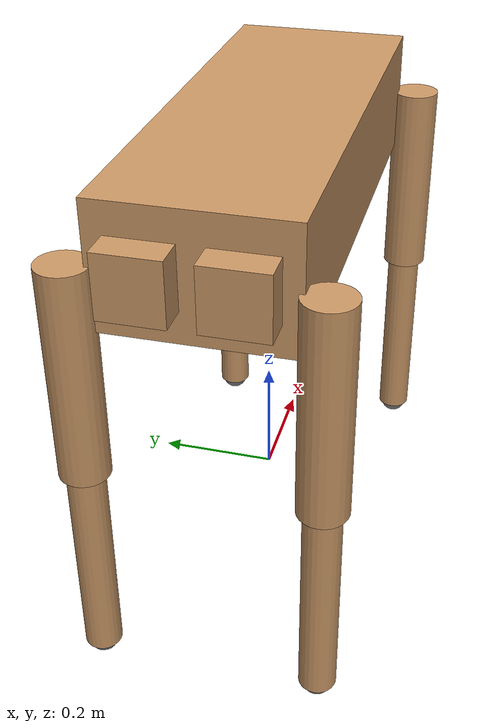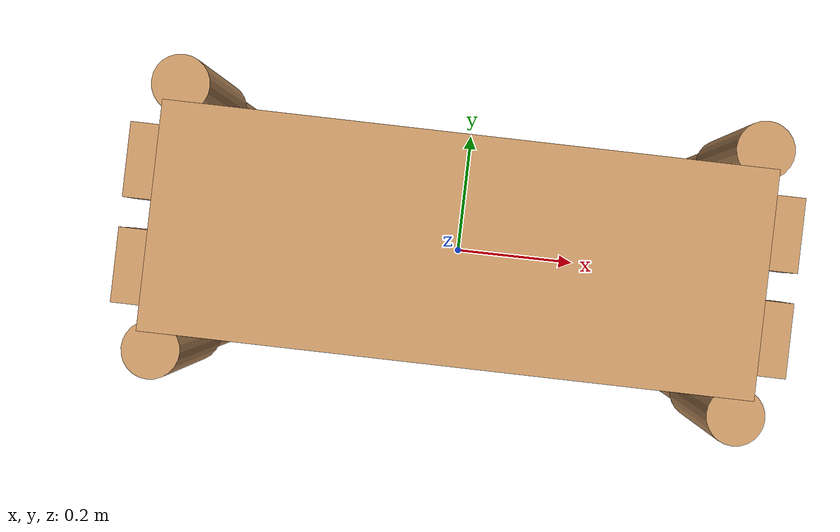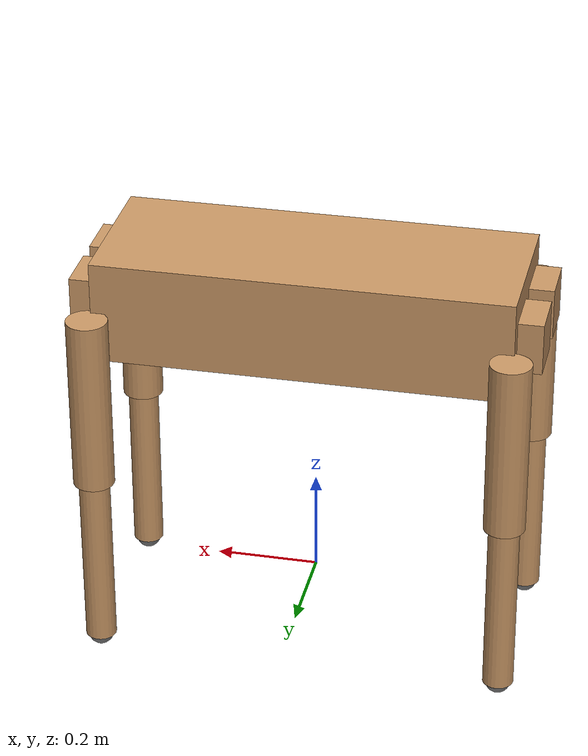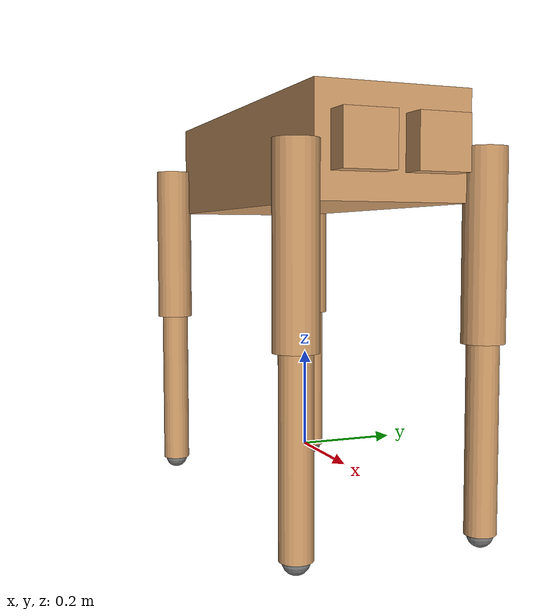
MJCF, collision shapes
<?xml version="1.0" encoding="utf-8"?>
<mujoco model="krm_qugv">
  <compiler angle="radian" autolimits="true" coordinate="local"/>

  <option timestep="0.001" iterations="50" tolerance="1e-10" solver="Newton" gravity="0 0 -9.81" cone="elliptic" impratio="100" integrator="RK4">
    <flag warmstart="enable" energy="enable" contact="enable" frictionloss="enable"/>
  </option>

  <default>
    <default class="krm">
      <joint damping="1.0" frictionloss="0.1" armature="0.01"/>

      <default class="visual">
        <geom type="mesh" contype="0" conaffinity="0" group="2" rgba="1 1 1 1"/>
      </default>

      <default class="collision">
         <geom type="cylinder" group="3" contype="1" conaffinity="1" rgba="0.8 0.6 0.4 1"/>
      </default>

      <default class="foot">
        <geom type="sphere" size="0.025" priority="1" condim="3" friction="0.8 0.02 0.01" solimp="0.015 1 0.031" solref="0.02 1"/>
      </default>

      <default class="hip_roll">
          <joint axis="1 0 0" range="-0.785 0.785"/>
          <position kp="1500" forcerange="-150 150" ctrlrange="-0.785 0.785"/>
      </default>
      <default class="hip_pitch">
          <joint axis="0 1 0" range="-2.356 2.356"/>
          <position kp="1500" forcerange="-150 150" ctrlrange="-2.356 2.356"/>
      </default>
      <default class="knee">
          <joint axis="0 1 0"/>
          <position kp="1500" forcerange="-150 150"/>
          </default>
    </default>
  </default>

  <asset>
    <mesh name="TORSO" file="mesh/TORSO.STL" />
    <mesh name="FL_HIP" file="mesh/FL_HIP.STL" />
    <mesh name="FL_THIGH" file="mesh/FL_THIGH.STL" />
    <mesh name="FL_CALF" file="mesh/FL_CALF.STL" />
    <mesh name="FR_HIP" file="mesh/FR_HIP.STL" />
    <mesh name="FR_THIGH" file="mesh/FR_THIGH.STL" />
    <mesh name="FR_CALF" file="mesh/FR_CALF.STL" />
    <mesh name="RL_HIP" file="mesh/RL_HIP.STL" />
    <mesh name="RL_THIGH" file="mesh/RL_THIGH.STL" />
    <mesh name="RL_CALF" file="mesh/RL_CALF.STL" />
    <mesh name="RR_HIP" file="mesh/RR_HIP.STL" />
    <mesh name="RR_THIGH" file="mesh/RR_THIGH.STL" />
    <mesh name="RR_CALF" file="mesh/RR_CALF.STL" />
  </asset>

  <worldbody>
    <body name="base" pos="0 0 0.6" childclass="krm"> <freejoint/>
      <site name="imu" pos="0 0 0"/>

      <inertial pos="-0.001 0.01 -0.01" mass="15.702" fullinertia="0.12 0.487 0.553 -0.002 0.001 -0.001"/>

      <geom mesh="TORSO" class="visual"/>
      <geom type="box" size="0.4 0.15 0.1" class="collision"/>

      <body name="FL_HIP" pos="0.3985 0.07 0">
        <inertial pos="-0.009 0.001 0" mass="1.683" fullinertia="0.003 0.004 0.003 0 0 0"/>
        <joint name="FL_HR_JOINT" class="hip_roll"/>

        <geom mesh="FL_HIP" class="visual"/>
        <geom type="box" size="0.05 0.05 0.05" class="collision"/> <body name="FL_THIGH" pos="0 0.11125 0">
          <inertial pos="-0.007 -0.022 -0.056" mass="3.615" fullinertia="0.047 0.047 0.007 -0.001 0.003 -0.004"/>
          <joint name="FL_HP_JOINT" class="hip_pitch"/>

          <geom mesh="FL_THIGH" class="visual"/>
          <geom type="cylinder" size="0.04 0.175" pos="0 0 -0.175" class="collision"/>

          <body name="FL_CALF" pos="0 0 -0.35">
             <inertial pos="0.002 0 -0.171" mass="0.968" fullinertia="0.02 0.021 0.001 0 0 0"/>
             <joint name="FL_KN_JOINT" class="knee" range="-2.844 0"/>

             <geom mesh="FL_CALF" class="visual"/>
             <geom type="cylinder" size="0.03 0.175" pos="0 0 -0.175" class="collision"/>

             <geom name="FL_foot" class="foot" pos="0 0 -0.35"/>
             <site name="FL_foot_site" pos="0 0 -0.35" size="0.01" rgba="1 0 0 1"/>
          </body>
        </body>
      </body>

      <body name="FR_HIP" pos="0.3985 -0.07 0">
        <inertial pos="-0.009 -0.001 0" mass="1.683" fullinertia="0.003 0.004 0.003 0 0 0"/>
        <joint name="FR_HR_JOINT" class="hip_roll"/> <geom mesh="FR_HIP" class="visual"/>
        <geom type="box" size="0.05 0.05 0.05" class="collision"/>

        <body name="FR_THIGH" pos="0 -0.11125 0">
          <inertial pos="-0.007 0.022 -0.056" mass="3.617" fullinertia="0.047 0.047 0.007 -0.001 0.003 -0.004"/> <joint name="FR_HP_JOINT" class="hip_pitch" axis="0 -1 0"/> <geom mesh="FR_THIGH" class="visual"/>
          <geom type="cylinder" size="0.04 0.175" pos="0 0 -0.175" class="collision"/>

          <body name="FR_CALF" pos="0 0 -0.35">
            <inertial pos="0.002 0 -0.171" mass="0.968" fullinertia="0.02 0.021 0.001 0 0 0"/>
            <joint name="FR_KN_JOINT" class="knee" axis="0 -1 0" range="0 2.844"/>

            <geom mesh="FR_CALF" class="visual"/>
            <geom type="cylinder" size="0.03 0.175" pos="0 0 -0.175" class="collision"/>

            <geom name="FR_foot" class="foot" pos="0 0 -0.35"/>
            <site name="FR_foot_site" pos="0 0 -0.35" size="0.01" rgba="1 0 0 1"/>
          </body>
        </body>
      </body>

      <body name="RL_HIP" pos="-0.3985 0.07 0">
        <inertial pos="0.009 0.001 0" mass="1.683" fullinertia="0.003 0.004 0.003 0 0 0"/>
        <joint name="RL_HR_JOINT" class="hip_roll" axis="-1 0 0"/>

        <geom mesh="RL_HIP" class="visual"/>
        <geom type="box" size="0.05 0.05 0.05" class="collision"/>

        <body name="RL_THIGH" pos="0 0.11125 0">
          <inertial pos="0.007 -0.022 -0.056" mass="3.617" fullinertia="0.047 0.047 0.007 -0.001 0.003 -0.004"/>
          <joint name="RL_HP_JOINT" class="hip_pitch"/>

          <geom mesh="RL_THIGH" class="visual"/>
          <geom type="cylinder" size="0.04 0.175" pos="0 0 -0.175" class="collision"/>

          <body name="RL_CALF" pos="0 0 -0.35">
            <inertial pos="-0.002 0 -0.171" mass="0.968" fullinertia="0.02 0.021 0.001 0 0 0"/>
            <joint name="RL_KN_JOINT" class="knee" range="0 2.844"/> <geom mesh="RL_CALF" class="visual"/>
            <geom type="cylinder" size="0.03 0.175" pos="0 0 -0.175" class="collision"/>

            <geom name="RL_foot" class="foot" pos="0 0 -0.35"/>
            <site name="RL_foot_site" pos="0 0 -0.35" size="0.01" rgba="1 0 0 1"/>
          </body>
        </body>
      </body>

      <body name="RR_HIP" pos="-0.3985 -0.07 0">
        <inertial pos="0.009 -0.001 0" mass="1.683" fullinertia="0.003 0.004 0.003 0 0 0"/>
        <joint name="RR_HR_JOINT" class="hip_roll" axis="-1 0 0"/>

        <geom mesh="RR_HIP" class="visual"/>
        <geom type="box" size="0.05 0.05 0.05" class="collision"/>

        <body name="RR_THIGH" pos="0 -0.11125 0">
          <inertial pos="0.007 0.022 -0.056" mass="3.615" fullinertia="0.047 0.047 0.007 -0.001 0.003 -0.004"/>
          <joint name="RR_HP_JOINT" class="hip_pitch" axis="0 -1 0"/>

          <geom mesh="RR_THIGH" class="visual"/>
          <geom type="cylinder" size="0.04 0.175" pos="0 0 -0.175" class="collision"/>

          <body name="RR_CALF" pos="0 0 -0.35">
            <inertial pos="-0.002 0 -0.171" mass="0.968" fullinertia="0.02 0.021 0.001 0 0 0"/>
            <joint name="RR_KN_JOINT" class="knee" axis="0 -1 0" range="-2.844 0"/>

            <geom mesh="RR_CALF" class="visual"/>
            <geom type="cylinder" size="0.03 0.175" pos="0 0 -0.175" class="collision"/>

            <geom name="RR_foot" class="foot" pos="0 0 -0.35"/>
            <site name="RR_foot_site" pos="0 0 -0.35" size="0.01" rgba="1 0 0 1"/>
          </body>
        </body>
      </body>
    </body>
  </worldbody>

  <contact>
      <exclude body1="base" body2="FL_THIGH"/>
      <exclude body1="base" body2="FR_THIGH"/>
      <exclude body1="base" body2="RL_THIGH"/>
      <exclude body1="base" body2="RR_THIGH"/>
  </contact>

  <actuator>
    <position name="FL_HR" joint="FL_HR_JOINT" class="hip_roll"/>
    <position name="FL_HP" joint="FL_HP_JOINT" class="hip_pitch"/>
    <position name="FL_KN" joint="FL_KN_JOINT" class="knee" ctrlrange="-2.844 0"/>

    <position name="FR_HR" joint="FR_HR_JOINT" class="hip_roll"/>
    <position name="FR_HP" joint="FR_HP_JOINT" class="hip_pitch"/>
    <position name="FR_KN" joint="FR_KN_JOINT" class="knee" ctrlrange="0 2.844"/>

    <position name="RL_HR" joint="RL_HR_JOINT" class="hip_roll"/>
    <position name="RL_HP" joint="RL_HP_JOINT" class="hip_pitch"/>
    <position name="RL_KN" joint="RL_KN_JOINT" class="knee" ctrlrange="0 2.844"/>

    <position name="RR_HR" joint="RR_HR_JOINT" class="hip_roll"/>
    <position name="RR_HP" joint="RR_HP_JOINT" class="hip_pitch"/>
    <position name="RR_KN" joint="RR_KN_JOINT" class="knee" ctrlrange="-2.844 0"/>
  </actuator>

  <sensor>
      <framequat name="orientation" objtype="site" objname="imu"/>
      <gyro name="gyro" site="imu"/>
      <accelerometer name="accel" site="imu"/>

      <jointpos name="FL_HR_pos" joint="FL_HR_JOINT"/> <jointvel name="FL_HR_vel" joint="FL_HR_JOINT"/> <actuatorfrc name="FL_HR_torque" actuator="FL_HR"/>
      <jointpos name="FL_HP_pos" joint="FL_HP_JOINT"/> <jointvel name="FL_HP_vel" joint="FL_HP_JOINT"/> <actuatorfrc name="FL_HP_torque" actuator="FL_HP"/>
      <jointpos name="FL_KN_pos" joint="FL_KN_JOINT"/> <jointvel name="FL_KN_vel" joint="FL_KN_JOINT"/> <actuatorfrc name="FL_KN_torque" actuator="FL_KN"/>

      <force name="force_FL" site="FL_foot_site"/> <torque name="torque_FL" site="FL_foot_site"/>
      <force name="force_FR" site="FR_foot_site"/> <torque name="torque_FR" site="FR_foot_site"/>
      <force name="force_RL" site="RL_foot_site"/> <torque name="torque_RL" site="RL_foot_site"/>
      <force name="force_RR" site="RR_foot_site"/> <torque name="torque_RR" site="RR_foot_site"/>
  </sensor>
</mujoco>
